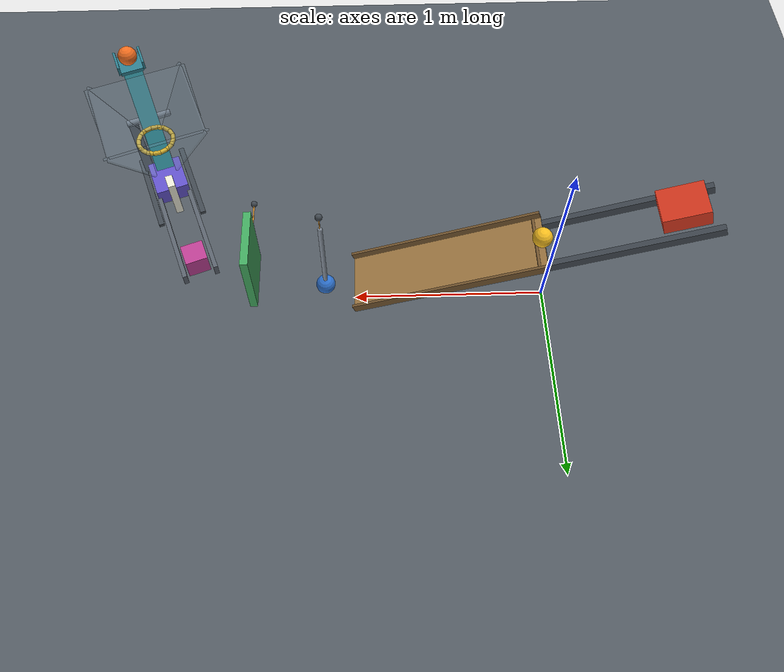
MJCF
<mujoco model="passive_chain_reaction">
  <compiler angle="degree" autolimits="true" inertiafromgeom="true"/>
  <option timestep="0.002" gravity="0 0 -9.81" integrator="implicitfast" solver="Newton" iterations="100" tolerance="1e-10"/>
  <visual>
    <global azimuth="135" elevation="-25"/>
    <headlight ambient="0.4 0.4 0.4" diffuse="0.7 0.7 0.7" specular="0.2 0.2 0.2"/>
  </visual>

  <!-- MuJoCo has no scalar restitution setting. The damping ratio below approximates e = 0.05. -->
  <!-- The slide joints provide ideal axial guidance; all initial velocities are zero. -->

  <worldbody>
    <light name="main_light" pos="0 -2 5" dir="0 0 -1" directional="true"/>
    <camera name="overview" pos="4 -5 3" xyaxes="0.780869 0.624695 0 -0.267261 0.334076 0.903696"/>
    <geom name="floor" type="plane" size="5 5 0.1" pos="0 0 0" friction="0.68 0.005 0.0001" condim="3" solref="0.008 0.690107" rgba="0.32 0.35 0.38 1"/>

    <!-- Cart1 begins 0.50 m from first contact, measured along its slide axis. -->
    <!-- Its initial spring compression is springref - qpos = 0.20 m. -->
    <body name="cart1" pos="-0.542789 0 0.764738" quat="0.984807753 0 0.173648178 0">
      <joint name="cart1_slide" type="slide" axis="1 0 0" range="0 0.54" stiffness="18" springref="0.20" damping="0.20" solreflimit="0.006 1"/>
      <geom name="cart1_chassis" type="box" size="0.11 0.09 0.05" mass="0.50" friction="0.68 0.005 0.0001" condim="3" solref="0.008 0.690107" rgba="0.85 0.22 0.12 1"/>
    </body>

    <body name="cart1_track" pos="-0.315570 0 0.628828" quat="0.984807753 0 0.173648178 0">
      <geom name="cart1_track_left" type="box" pos="0 0.12 -0.025" size="0.42 0.015 0.025" contype="0" conaffinity="0" rgba="0.25 0.28 0.31 1"/>
      <geom name="cart1_track_right" type="box" pos="0 -0.12 -0.025" size="0.42 0.015 0.025" contype="0" conaffinity="0" rgba="0.25 0.28 0.31 1"/>
    </body>

    <!-- Ramp surface length 1.00 m, width 0.30 m, inclination 20 degrees. -->
    <!-- Its downhill endpoint is (1, 0, 0.15). -->
    <!-- A small retaining lip keeps ball1 at the high end until cart1 arrives. -->
    <body name="ramp1" pos="0.525023 0 0.306915" quat="0.984807753 0 0.173648178 0">
      <geom name="ramp1_surface" type="box" size="0.50 0.15 0.015" friction="0.68 0.005 0.0001" condim="3" solref="0.008 0.690107" rgba="0.62 0.47 0.26 1"/>
      <geom name="ramp1_retaining_lip" type="cylinder" pos="-0.46 0 0.023" quat="0.707106781 0.707106781 0 0" size="0.008 0.145" friction="0.68 0.005 0.0001" condim="3" solref="0.008 0.690107" rgba="0.45 0.33 0.18 1"/>
      <geom name="ramp1_left_edge" type="box" pos="0 0.157 0.03" size="0.50 0.007 0.025" friction="0.68 0.005 0.0001" condim="3" solref="0.008 0.690107" rgba="0.45 0.33 0.18 1"/>
      <geom name="ramp1_right_edge" type="box" pos="0 -0.157 0.03" size="0.50 0.007 0.025" friction="0.68 0.005 0.0001" condim="3" solref="0.008 0.690107" rgba="0.45 0.33 0.18 1"/>
    </body>

    <body name="ball1" pos="0.077408 0 0.539005">
      <freejoint name="ball1_free"/>
      <geom name="ball1_sphere" type="sphere" size="0.05" mass="0.20" friction="0.68 0.005 0.0001" condim="3" solref="0.008 0.690107" rgba="0.96 0.74 0.12 1"/>
    </body>

    <!-- The initial bob's nearest surface is 0.10 m beyond the ramp endpoint. -->
    <!-- Hinge-to-bob-center length is 0.50 m; total pendulum mass is 0.35 kg. -->
    <body name="pendulum1" pos="1.15 0 0.65">
      <joint name="pendulum1_hinge" type="hinge" axis="0 1 0" range="-42 0" damping="0.04" frictionloss="0.002" solreflimit="0.006 1"/>
      <geom name="pendulum1_rod" type="capsule" fromto="0 0 0 0 0 -0.45" size="0.012" mass="0.03" friction="0.68 0.005 0.0001" condim="3" solref="0.008 0.690107" rgba="0.55 0.59 0.64 1"/>
      <geom name="pendulum1_bob" type="sphere" pos="0 0 -0.50" size="0.05" mass="0.32" friction="0.68 0.005 0.0001" condim="3" solref="0.008 0.690107" rgba="0.18 0.45 0.82 1"/>
      <site name="pendulum1_spring_attachment" pos="0 0 -0.50" size="0.004" rgba="0.9 0.6 0.2 1"/>
    </body>

    <!-- This collinear passive spring nearly counterbalances pendulum gravity. -->
    <!-- It exerts zero hinge torque at the initial configuration. -->
    <body name="pendulum1_anchor" pos="1.15 0 0.75">
      <geom name="pendulum1_anchor_cap" type="sphere" size="0.018" contype="0" conaffinity="0" rgba="0.25 0.28 0.31 1"/>
      <site name="pendulum1_spring_anchor" pos="0 0 0" size="0.004" rgba="0.9 0.6 0.2 1"/>
    </body>

    <!-- At a 40-degree pendulum swing, the bob reaches the initial door face. -->
    <!-- Door dimensions: height 0.42, width 0.32, thickness 0.04 m. -->
    <body name="door1" pos="1.541394 -0.28 0">
      <joint name="door1_hinge" type="hinge" axis="0 0 1" range="-70 0" damping="0.04" frictionloss="0.03" solreflimit="0.004 1" solimplimit="0.99 0.999 0.001"/>
      <geom name="door1_panel" type="box" pos="0 0.16 0.21" size="0.02 0.16 0.21" mass="0.45" friction="0.68 0.005 0.0001" condim="3" solref="0.008 0.690107" rgba="0.26 0.66 0.37 1"/>
      <site name="door1_spring_attachment" pos="0 0.30 0.21" size="0.004" rgba="0.9 0.6 0.2 1"/>
    </body>

    <!-- A passive over-center spring has zero initial door torque. -->
    <!-- The pendulum's contact perturbs the door away from dead center. -->
    <body name="door1_anchor" pos="1.541394 -0.48 0.21">
      <geom name="door1_anchor_cap" type="sphere" size="0.018" contype="0" conaffinity="0" rgba="0.25 0.28 0.31 1"/>
      <site name="door1_spring_anchor" pos="0 0 0" size="0.004" rgba="0.9 0.6 0.2 1"/>
    </body>

    <!-- Downstream travel direction is (sin(20 degrees), -cos(20 degrees), 0). -->
    <body name="block1" pos="1.866032 -0.236331 0.06" quat="0.819152044 0 0 -0.573576436">
      <freejoint name="block1_free"/>
      <geom name="block1_cube" type="box" size="0.06 0.06 0.06" mass="0.35" friction="0.68 0.005 0.0001" condim="3" solref="0.008 0.690107" rgba="0.73 0.24 0.57 1"/>
    </body>

    <body name="block1_guide" pos="1.927596 -0.405476 0.035" quat="0.819152044 0 0 -0.573576436">
      <geom name="block1_guide_left" type="box" pos="0 0.085 0" size="0.28 0.012 0.035" friction="0.68 0.005 0.0001" condim="3" solref="0.008 0.690107" rgba="0.35 0.38 0.42 1"/>
      <geom name="block1_guide_right" type="box" pos="0 -0.085 0" size="0.28 0.012 0.035" friction="0.68 0.005 0.0001" condim="3" solref="0.008 0.690107" rgba="0.35 0.38 0.42 1"/>
    </body>

    <!-- Initial face-to-face separation from block1 is 0.32 m. -->
    <body name="domino1" pos="2.009680 -0.630002 0.12" quat="0.819152044 0 0 -0.573576436">
      <freejoint name="domino1_free"/>
      <geom name="domino1_tile" type="box" size="0.04 0.02 0.12" mass="0.25" friction="0.68 0.005 0.0001" condim="3" solref="0.008 0.690107" rgba="0.92 0.91 0.84 1"/>
    </body>

    <!-- Lever initially rises 60 degrees toward its right end. -->
    <!-- Its left endpoint lies 0.18 m downstream of domino1. -->
    <!-- Positive hinge rotation raises the right end through a further 45 degrees. -->
    <body name="lever1" pos="2.122547 -0.940101 0.409808" quat="0.709406480 -0.286788218 -0.409576022 -0.496731765">
      <joint name="lever1_hinge" type="hinge" axis="0 -1 0" range="0 45" damping="0.04" solreflimit="0.004 1" solimplimit="0.99 0.999 0.001"/>
      <geom name="lever1_beam" type="box" size="0.30 0.05 0.02" mass="0.46" conaffinity="3" friction="0.68 0.005 0.0001" condim="3" solref="0.008 0.690107" rgba="0.22 0.62 0.68 1"/>
      <geom name="lever1_ball_platform" type="box" pos="0.308660 0 0.005" quat="0.866025404 0 0.5 0" size="0.062 0.060 0.010" mass="0.025" conaffinity="3" friction="0.68 0.005 0.0001" condim="3" solref="0.008 0.690107" rgba="0.18 0.49 0.55 1"/>
      <geom name="lever1_platform_left" type="box" pos="0.330311 0.065 0.0175" quat="0.866025404 0 0.5 0" size="0.062 0.006 0.025" mass="0.0075" conaffinity="3" friction="0.68 0.005 0.0001" condim="3" solref="0.008 0.690107" rgba="0.18 0.49 0.55 1"/>
      <geom name="lever1_platform_right" type="box" pos="0.330311 -0.065 0.0175" quat="0.866025404 0 0.5 0" size="0.062 0.006 0.025" mass="0.0075" conaffinity="3" friction="0.68 0.005 0.0001" condim="3" solref="0.008 0.690107" rgba="0.18 0.49 0.55 1"/>
    </body>

    <body name="lever1_support" pos="2.122547 -0.940101 0.204904" quat="0.819152044 0 0 -0.573576436">
      <geom name="lever1_support_post" type="box" pos="0 0.09 0" size="0.025 0.025 0.204904" contype="0" conaffinity="0" rgba="0.30 0.33 0.37 1"/>
      <geom name="lever1_support_axle" type="cylinder" pos="0 0 0.204904" quat="0.707106781 0.707106781 0 0" size="0.018 0.12" contype="0" conaffinity="0" rgba="0.45 0.49 0.54 1"/>
    </body>

    <body name="ball2" pos="2.173850 -1.081055 0.739808">
      <freejoint name="ball2_free"/>
      <geom name="ball2_sphere" type="sphere" size="0.05" mass="0.20" contype="2" conaffinity="13" friction="0.68 0.005 0.0001" condim="3" solref="0.008 0.690107" rgba="0.95 0.43 0.12 1"/>
    </body>

    <!-- Capsule polygon with an approximately 0.160 m minimum clear diameter. -->
    <!-- Ring center is exactly 0.32 m below ball2's initial center. -->
    <body name="ring1" pos="2.060983 -0.770956 0.419808">
      <geom name="ring1_segment00" type="capsule" fromto="0.093807 0 0 0.086668 0.035899 0" size="0.012" contype="4" conaffinity="2" friction="0.68 0.005 0.0001" condim="3" solref="0.008 0.690107" rgba="0.83 0.69 0.19 1"/>
      <geom name="ring1_segment01" type="capsule" fromto="0.086668 0.035899 0 0.066331 0.066331 0" size="0.012" contype="4" conaffinity="2" friction="0.68 0.005 0.0001" condim="3" solref="0.008 0.690107" rgba="0.83 0.69 0.19 1"/>
      <geom name="ring1_segment02" type="capsule" fromto="0.066331 0.066331 0 0.035899 0.086668 0" size="0.012" contype="4" conaffinity="2" friction="0.68 0.005 0.0001" condim="3" solref="0.008 0.690107" rgba="0.83 0.69 0.19 1"/>
      <geom name="ring1_segment03" type="capsule" fromto="0.035899 0.086668 0 0 0.093807 0" size="0.012" contype="4" conaffinity="2" friction="0.68 0.005 0.0001" condim="3" solref="0.008 0.690107" rgba="0.83 0.69 0.19 1"/>
      <geom name="ring1_segment04" type="capsule" fromto="0 0.093807 0 -0.035899 0.086668 0" size="0.012" contype="4" conaffinity="2" friction="0.68 0.005 0.0001" condim="3" solref="0.008 0.690107" rgba="0.83 0.69 0.19 1"/>
      <geom name="ring1_segment05" type="capsule" fromto="-0.035899 0.086668 0 -0.066331 0.066331 0" size="0.012" contype="4" conaffinity="2" friction="0.68 0.005 0.0001" condim="3" solref="0.008 0.690107" rgba="0.83 0.69 0.19 1"/>
      <geom name="ring1_segment06" type="capsule" fromto="-0.066331 0.066331 0 -0.086668 0.035899 0" size="0.012" contype="4" conaffinity="2" friction="0.68 0.005 0.0001" condim="3" solref="0.008 0.690107" rgba="0.83 0.69 0.19 1"/>
      <geom name="ring1_segment07" type="capsule" fromto="-0.086668 0.035899 0 -0.093807 0 0" size="0.012" contype="4" conaffinity="2" friction="0.68 0.005 0.0001" condim="3" solref="0.008 0.690107" rgba="0.83 0.69 0.19 1"/>
      <geom name="ring1_segment08" type="capsule" fromto="-0.093807 0 0 -0.086668 -0.035899 0" size="0.012" contype="4" conaffinity="2" friction="0.68 0.005 0.0001" condim="3" solref="0.008 0.690107" rgba="0.83 0.69 0.19 1"/>
      <geom name="ring1_segment09" type="capsule" fromto="-0.086668 -0.035899 0 -0.066331 -0.066331 0" size="0.012" contype="4" conaffinity="2" friction="0.68 0.005 0.0001" condim="3" solref="0.008 0.690107" rgba="0.83 0.69 0.19 1"/>
      <geom name="ring1_segment10" type="capsule" fromto="-0.066331 -0.066331 0 -0.035899 -0.086668 0" size="0.012" contype="4" conaffinity="2" friction="0.68 0.005 0.0001" condim="3" solref="0.008 0.690107" rgba="0.83 0.69 0.19 1"/>
      <geom name="ring1_segment11" type="capsule" fromto="-0.035899 -0.086668 0 0 -0.093807 0" size="0.012" contype="4" conaffinity="2" friction="0.68 0.005 0.0001" condim="3" solref="0.008 0.690107" rgba="0.83 0.69 0.19 1"/>
      <geom name="ring1_segment12" type="capsule" fromto="0 -0.093807 0 0.035899 -0.086668 0" size="0.012" contype="4" conaffinity="2" friction="0.68 0.005 0.0001" condim="3" solref="0.008 0.690107" rgba="0.83 0.69 0.19 1"/>
      <geom name="ring1_segment13" type="capsule" fromto="0.035899 -0.086668 0 0.066331 -0.066331 0" size="0.012" contype="4" conaffinity="2" friction="0.68 0.005 0.0001" condim="3" solref="0.008 0.690107" rgba="0.83 0.69 0.19 1"/>
      <geom name="ring1_segment14" type="capsule" fromto="0.066331 -0.066331 0 0.086668 -0.035899 0" size="0.012" contype="4" conaffinity="2" friction="0.68 0.005 0.0001" condim="3" solref="0.008 0.690107" rgba="0.83 0.69 0.19 1"/>
      <geom name="ring1_segment15" type="capsule" fromto="0.086668 -0.035899 0 0.093807 0 0" size="0.012" contype="4" conaffinity="2" friction="0.68 0.005 0.0001" condim="3" solref="0.008 0.690107" rgba="0.83 0.69 0.19 1"/>
    </body>

    <!-- Passive square catch funnel above the ring; it interacts only with ball2. -->
    <body name="ball2_guide" pos="2.060983 -0.770956 0.419808" quat="0.819152044 0 0 -0.573576436">
      <geom name="ball2_guide_positive_x" type="box" pos="0.1525 0 0.135192" quat="0.930804 0 0.365519 0" size="0.006 0.27 0.143283" contype="4" conaffinity="2" friction="0.68 0.005 0.0001" condim="3" solref="0.008 0.690107" rgba="0.55 0.65 0.72 0.25"/>
      <geom name="ball2_guide_negative_x" type="box" pos="-0.1525 0 0.135192" quat="0.930804 0 -0.365519 0" size="0.006 0.27 0.143283" contype="4" conaffinity="2" friction="0.68 0.005 0.0001" condim="3" solref="0.008 0.690107" rgba="0.55 0.65 0.72 0.25"/>
      <geom name="ball2_guide_positive_y" type="box" pos="0 0.1525 0.135192" quat="0.930804 -0.365519 0 0" size="0.27 0.006 0.143283" contype="4" conaffinity="2" friction="0.68 0.005 0.0001" condim="3" solref="0.008 0.690107" rgba="0.55 0.65 0.72 0.25"/>
      <geom name="ball2_guide_negative_y" type="box" pos="0 -0.1525 0.135192" quat="0.930804 0.365519 0 0" size="0.27 0.006 0.143283" contype="4" conaffinity="2" friction="0.68 0.005 0.0001" condim="3" solref="0.008 0.690107" rgba="0.55 0.65 0.72 0.25"/>
    </body>

    <!-- Ball2's center is 0.25 m below the ring center at top-face contact. -->
    <body name="cart2" pos="2.060983 -0.770956 0.069808" quat="0.819152044 0 0 -0.573576436">
      <joint name="cart2_slide" type="slide" axis="1 0 0" range="-0.12 0.12" damping="0.20" solreflimit="0.006 1"/>
      <geom name="cart2_chassis" type="box" size="0.11 0.09 0.05" mass="0.50" contype="8" conaffinity="3" friction="0.68 0.005 0.0001" condim="3" solref="0.008 0.690107" rgba="0.38 0.32 0.79 1"/>
    </body>

    <body name="cart2_track" pos="2.060983 -0.770956 0.01" quat="0.819152044 0 0 -0.573576436">
      <geom name="cart2_track_left" type="box" pos="0 0.12 0" size="0.25 0.015 0.01" contype="0" conaffinity="0" rgba="0.25 0.28 0.31 1"/>
      <geom name="cart2_track_right" type="box" pos="0 -0.12 0" size="0.25 0.015 0.01" contype="0" conaffinity="0" rgba="0.25 0.28 0.31 1"/>
    </body>
  </worldbody>

  <contact>
    <exclude name="cart1_ramp_clearance" body1="cart1" body2="ramp1"/>
  </contact>

  <tendon>
    <spatial name="pendulum1_counterbalance_spring" stiffness="50" springlength="0.20" damping="0" width="0.003" rgba="0.85 0.58 0.20 1">
      <site site="pendulum1_spring_anchor"/>
      <site site="pendulum1_spring_attachment"/>
    </spatial>
    <spatial name="door1_overcenter_spring" stiffness="150" springlength="0.15" damping="0" width="0.004" rgba="0.85 0.58 0.20 1">
      <site site="door1_spring_anchor"/>
      <site site="door1_spring_attachment"/>
    </spatial>
  </tendon>

  <!-- Unspecified keyframe positions use qpos0; unspecified velocities are zero. -->
  <keyframe>
    <key name="start" time="0"/>
  </keyframe>
</mujoco>
